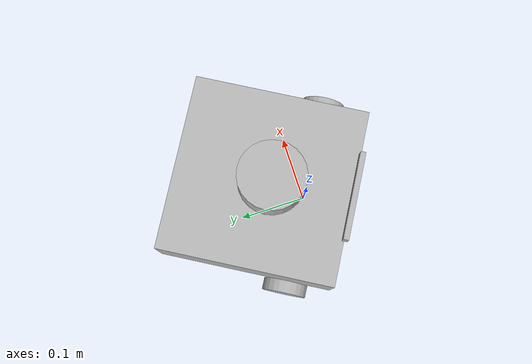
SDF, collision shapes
<?xml version="1.0" ?>
<sdf version="1.5">
  <model name="turtlebot3_waffle">
  <pose>0.0 0.0 0.0 0.0 0.0 -2.10</pose>

    <link name="base_footprint"/>

    <link name="base_link">

      <inertial>
        <pose>-0.064 0 0.048 0 0 0</pose>
        <inertia>
          <ixx>0.001</ixx>
          <ixy>0.000</ixy>
          <ixz>0.000</ixz>
          <iyy>0.001</iyy>
          <iyz>0.000</iyz>
          <izz>0.001</izz>
        </inertia>
        <mass>1.0</mass>
      </inertial>

      <collision name="base_collision">
        <pose>-0.064 0 0.048 0 0 0</pose>
        <geometry>
          <box>
            <size>0.265 0.265 0.089</size>
          </box>
        </geometry>
      </collision>

      <visual name="base_visual">
        <pose>-0.064 0 0 0 0 0</pose>
        <geometry>
          <mesh>
            <uri>model://turtlebot3_waffle/meshes/waffle_base.dae</uri>
            <scale>0.001 0.001 0.001</scale>
          </mesh>
        </geometry>
      </visual>
    </link>

    <link name="imu_link">
      <sensor name="tb3_imu" type="imu">
        <always_on>true</always_on>
        <update_rate>200</update_rate>
        <imu>
          <angular_velocity>
            <x>
              <noise type="gaussian">
                <mean>0.0</mean>
                <stddev>2e-4</stddev>
              </noise>
            </x>
            <y>
              <noise type="gaussian">
                <mean>0.0</mean>
                <stddev>2e-4</stddev>
              </noise>
            </y>
            <z>
              <noise type="gaussian">
                <mean>0.0</mean>
                <stddev>2e-4</stddev>
              </noise>
            </z>
          </angular_velocity>
          <linear_acceleration>
            <x>
              <noise type="gaussian">
                <mean>0.0</mean>
                <stddev>1.7e-2</stddev>
              </noise>
            </x>
            <y>
              <noise type="gaussian">
                <mean>0.0</mean>
                <stddev>1.7e-2</stddev>
              </noise>
            </y>
            <z>
              <noise type="gaussian">
                <mean>0.0</mean>
                <stddev>1.7e-2</stddev>
              </noise>
            </z>
          </linear_acceleration>
        </imu>
        <plugin name="turtlebot3_imu" filename="libgazebo_ros_imu_sensor.so">
          <ros>
            <argument>~/--ros-args --remap ~/out:=imu</argument>
          </ros>
        </plugin>
      </sensor>
    </link>

    <link name="base_scan">
      <inertial>
        <pose>-0.052 0 0.111 0 0 0</pose>
        <inertia>
          <ixx>0.001</ixx>
          <ixy>0.000</ixy>
          <ixz>0.000</ixz>
          <iyy>0.001</iyy>
          <iyz>0.000</iyz>
          <izz>0.001</izz>
        </inertia>
        <mass>0.125</mass>
      </inertial>

      <collision name="lidar_sensor_collision">
        <pose>-0.052 0 0.111 0 0 0</pose>
        <geometry>
          <cylinder>
            <radius>0.0508</radius>
            <length>0.055</length>
          </cylinder>
        </geometry>
      </collision>

      <visual name="lidar_sensor_visual">
        <pose>-0.064 0 0.121 0 0 0</pose>
        <geometry>
          <mesh>
            <uri>model://turtlebot3_waffle/meshes/lds.dae</uri>
            <scale>0.001 0.001 0.001</scale>
          </mesh>
        </geometry>
      </visual>

      <sensor name="hls_lfcd_lds" type="ray">
        <always_on>true</always_on>
        <visualize>true</visualize>
        <pose>-0.064 0 0.121 0 0 0</pose>
        <update_rate>5</update_rate>
        <ray>
          <scan>
            <horizontal>
              <samples>360</samples>
              <resolution>1.000000</resolution>
              <min_angle>0.000000</min_angle>
              <max_angle>6.280000</max_angle>
            </horizontal>
          </scan>
          <range>
            <min>0.120000</min>
            <max>10</max>
            <resolution>0.015000</resolution>
          </range>
          <noise>
            <type>gaussian</type>
            <mean>0.0</mean>
            <stddev>0.01</stddev>
          </noise>
        </ray>
        <plugin name="turtlebot3_laserscan" filename="libgazebo_ros_ray_sensor.so">
          <ros>
            <argument>~/--ros-args --remap ~/out:=scan</argument>
          </ros>
          <output_type>sensor_msgs/LaserScan</output_type>
          <frame_name>base_scan</frame_name>
        </plugin>
      </sensor>
    </link>

    <link name="wheel_left_link">

      <inertial>
        <pose>0.0 0.144 0.023 -1.57 0 0</pose>
        <inertia>
          <ixx>0.001</ixx>
          <ixy>0.000</ixy>
          <ixz>0.000</ixz>
          <iyy>0.001</iyy>
          <iyz>0.000</iyz>
          <izz>0.001</izz>
        </inertia>
        <mass>0.1</mass>
      </inertial>

      <collision name="wheel_left_collision">
        <pose>0.0 0.144 0.023 -1.57 0 0</pose>
        <geometry>
          <cylinder>
            <radius>0.033</radius>
            <length>0.018</length>
          </cylinder>
        </geometry>
        <surface>
          <!-- This friction pamareter don't contain reliable data!! -->
          <friction>
            <ode>
              <mu>100000.0</mu>
              <mu2>100000.0</mu2>
              <fdir1>0 0 0</fdir1>
              <slip1>0.0</slip1>
              <slip2>0.0</slip2>
            </ode>
          </friction>
          <contact>
            <ode>
              <soft_cfm>0</soft_cfm>
              <soft_erp>0.2</soft_erp>
              <kp>1e+5</kp>
              <kd>1</kd>
              <max_vel>0.01</max_vel>
              <min_depth>0.001</min_depth>
            </ode>
          </contact>
        </surface>
      </collision>

      <visual name="wheel_left_visual">
        <pose>0.0 0.144 0.023 0 0 0</pose>
        <geometry>
          <mesh>
            <uri>model://turtlebot3_waffle/meshes/left_tire.dae</uri>
            <scale>0.001 0.001 0.001</scale>
          </mesh>
        </geometry>
      </visual>
    </link>

    <link name="wheel_right_link">

      <inertial>
        <pose>0.0 -0.144 0.023 -1.57 0 0</pose>
        <inertia>
          <ixx>0.001</ixx>
          <ixy>0.000</ixy>
          <ixz>0.000</ixz>
          <iyy>0.001</iyy>
          <iyz>0.000</iyz>
          <izz>0.001</izz>
        </inertia>
        <mass>0.1</mass>
      </inertial>

      <collision name="wheel_right_collision">
        <pose>0.0 -0.144 0.023 -1.57 0 0</pose>
        <geometry>
          <cylinder>
            <radius>0.033</radius>
            <length>0.018</length>
          </cylinder>
        </geometry>
        <surface>
          <!-- This friction pamareter don't contain reliable data!! -->
          <friction>
            <ode>
              <mu>100000.0</mu>
              <mu2>100000.0</mu2>
              <fdir1>0 0 0</fdir1>
              <slip1>0.0</slip1>
              <slip2>0.0</slip2>
            </ode>
          </friction>
          <contact>
            <ode>
              <soft_cfm>0</soft_cfm>
              <soft_erp>0.2</soft_erp>
              <kp>1e+5</kp>
              <kd>1</kd>
              <max_vel>0.01</max_vel>
              <min_depth>0.001</min_depth>
            </ode>
          </contact>
        </surface>
      </collision>

      <visual name="wheel_right_visual">
        <pose>0.0 -0.144 0.023 0 0 0</pose>
        <geometry>
          <mesh>
            <uri>model://turtlebot3_waffle/meshes/right_tire.dae</uri>
            <scale>0.001 0.001 0.001</scale>
          </mesh>
        </geometry>
      </visual>
    </link>

    <link name='caster_back_right_link'>
      <pose>-0.177 -0.064 -0.004 0 0 0</pose>
      <inertial>
        <mass>0.001</mass>
        <inertia>
          <ixx>0.00001</ixx>
          <ixy>0.000</ixy>
          <ixz>0.000</ixz>
          <iyy>0.00001</iyy>
          <iyz>0.000</iyz>
          <izz>0.00001</izz>
        </inertia>
      </inertial>
      <collision name='collision'>
        <geometry>
          <sphere>
            <radius>0.005000</radius>
          </sphere>
        </geometry>
        <surface>
          <contact>
            <ode>
              <soft_cfm>0</soft_cfm>
              <soft_erp>0.2</soft_erp>
              <kp>1e+5</kp>
              <kd>1</kd>
              <max_vel>0.01</max_vel>
              <min_depth>0.001</min_depth>
            </ode>
          </contact>
        </surface>
      </collision>
    </link>

    <link name='caster_back_left_link'>
      <pose>-0.177 0.064 -0.004 0 0 0</pose>
      <inertial>
        <mass>0.001</mass>
        <inertia>
          <ixx>0.00001</ixx>
          <ixy>0.000</ixy>
          <ixz>0.000</ixz>
          <iyy>0.00001</iyy>
          <iyz>0.000</iyz>
          <izz>0.00001</izz>
        </inertia>
      </inertial>
      <collision name='collision'>
        <geometry>
          <sphere>
            <radius>0.005000</radius>
          </sphere>
        </geometry>
        <surface>
          <contact>
            <ode>
              <soft_cfm>0</soft_cfm>
              <soft_erp>0.2</soft_erp>
              <kp>1e+5</kp>
              <kd>1</kd>
              <max_vel>0.01</max_vel>
              <min_depth>0.001</min_depth>
            </ode>
          </contact>
        </surface>
      </collision>
    </link>

    <link name="realsense_link">
      <inertial>
        <pose>0.069 -0.047 0.107 0 0 0</pose>
        <inertia>
          <ixx>0.001</ixx>
          <ixy>0.000</ixy>
          <ixz>0.000</ixz>
          <iyy>0.001</iyy>
          <iyz>0.000</iyz>
          <izz>0.001</izz>
        </inertia>
        <mass>0.035</mass>
      </inertial>

      <collision name="collision">
        <pose>0 0.047 0 0 0 0</pose>
        <geometry>
          <box>
            <size>0.008 0.130 0.022</size>
          </box>
        </geometry>
      </collision>
      <pose>0.069 -0.047 0.107 0 0 0</pose>

      <sensor name="intel_realsense_r200_depth" type="depth">
        <always_on>1</always_on>
        <update_rate>1</update_rate>
        <pose>0.064 -0.047 0.107 0 0 0</pose>
        <camera name="realsense_depth_camera">
        </camera>
	        <plugin name="intel_realsense_r200_depth_driver" filename="libgazebo_ros_camera.so">
            <ros>
              <argument>--ros-args --remap image_raw:=depth_camera/image_raw</argument>
              <argument>--ros-args --remap image_depth:=depth_camera/image_depth</argument>
              <argument>--ros-args --remap camera_info:=depth_camera/info_raw</argument>
              <argument>--ros-args --remap points:=depthcamera/points</argument>
              <argument>--ros-args --remap points:=depthcamera/points</argument>
            </ros>
            <camera_name>depth_camera</camera_name>
            <frame_name>realsense_depth_frame</frame_name>
            <hack_baseline>0.07</hack_baseline>
            <min_depth>0.001</min_depth>
          </plugin>
      </sensor>

      <sensor name="rgb_camera" type="camera">
        <always_on>true</always_on>
        <visualize>true</visualize>
        <update_rate>30</update_rate>
	      <pose>0.064 -0.047 0.107 0 0 0</pose>
        <camera name="rgb_camera">
          <horizontal_fov>1.02974</horizontal_fov>
          <image>
            <width>640</width>
            <height>480</height>
            <format>R8G8B8</format>
          </image>
          <clip>
            <near>0.02</near>
            <far>300</far>
          </clip>
          <noise>
            <type>gaussian</type>
            <mean>0.0</mean>
            <stddev>0.007</stddev>
          </noise>
        </camera>
          <plugin name="intel_realsense_r200_rgb_driver" filename="libgazebo_ros_camera.so">
            <ros>
              <namespace>rgb_camera</namespace>
              <argument>--ros-args --remap image_raw:=image_raw</argument>
              <argument>--ros-args --remap camera_info:=camera_info</argument>
            </ros>
            <camera_name>rgb_camera</camera_name>
            <frame_name>realsense_rgb_frame</frame_name>
            <hack_baseline>0.07</hack_baseline>
          </plugin>
      </sensor>
    </link>

    <joint name="base_joint" type="fixed">
      <parent>base_footprint</parent>
      <child>base_link</child>
      <pose>0.0 0.0 0.010 0 0 0</pose>
    </joint>

    <joint name="wheel_left_joint" type="revolute">
      <parent>base_link</parent>
      <child>wheel_left_link</child>
      <pose>0.0 0.144 0.023 -1.57 0 0</pose>
      <axis>
        <xyz>0 0 1</xyz>
      </axis>
    </joint>

    <joint name="wheel_right_joint" type="revolute">
      <parent>base_link</parent>
      <child>wheel_right_link</child>
      <pose>0.0 -0.144 0.023 -1.57 0 0</pose>
      <axis>
        <xyz>0 0 1</xyz>
      </axis>
    </joint>

    <joint name='caster_back_right_joint' type='ball'>
      <parent>base_link</parent>
      <child>caster_back_right_link</child>
    </joint>

    <joint name='caster_back_left_joint' type='ball'>
      <parent>base_link</parent>
      <child>caster_back_left_link</child>
    </joint>

    <joint name="lidar_joint" type="fixed">
      <parent>base_link</parent>
      <child>base_scan</child>
      <pose>-0.064 0 0.121 0 0 0</pose>
      <axis>
        <xyz>0 0 1</xyz>
      </axis>
    </joint>

    <joint name="camera_joint" type="fixed">
      <parent>base_link</parent>
      <child>realsense_link</child>
    </joint>

    <plugin name="turtlebot3_diff_drive" filename="libgazebo_ros_diff_drive.so">

      <ros>
      </ros>

      <update_rate>30</update_rate>

      <!-- wheels -->
      <left_joint>wheel_left_joint</left_joint>
      <right_joint>wheel_right_joint</right_joint>

      <!-- kinematics -->
      <wheel_separation>0.287</wheel_separation>
      <wheel_diameter>0.066</wheel_diameter>

      <!-- limits -->
      <max_wheel_torque>20</max_wheel_torque>
      <max_wheel_acceleration>1.0</max_wheel_acceleration>

      <command_topic>cmd_vel</command_topic>

      <!-- output -->
      <publish_odom>true</publish_odom>
      <publish_odom_tf>true</publish_odom_tf>
      <publish_wheel_tf>false</publish_wheel_tf>

      <odometry_topic>odom</odometry_topic>
      <odometry_frame>odom</odometry_frame>
      <robot_base_frame>base_footprint</robot_base_frame>

    </plugin>

    <plugin name="turtlebot3_joint_state" filename="libgazebo_ros_joint_state_publisher.so">
      <ros>
        <argument>--ros-args --remap ~/out:=joint_states</argument>
      </ros>
      <update_rate>30</update_rate>
      <joint_name>wheel_left_joint</joint_name>
      <joint_name>wheel_right_joint</joint_name>
    </plugin>

  </model>
</sdf>
